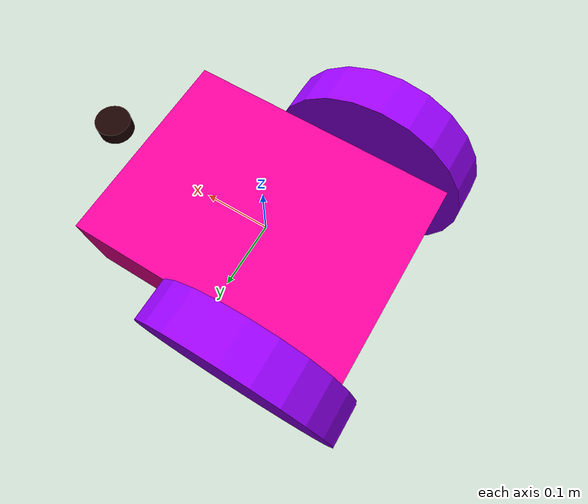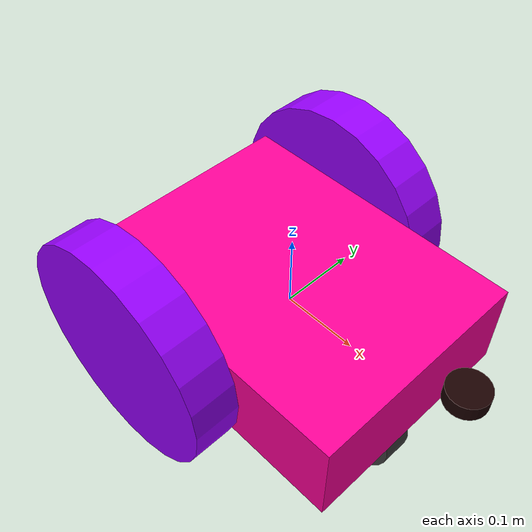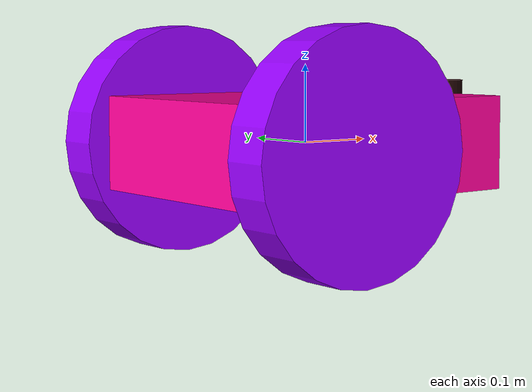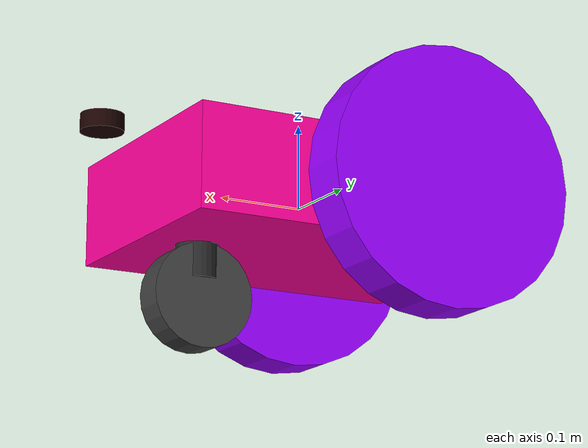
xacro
<?xml version="1.0"?>

<robot xmlns:xacro="http://www.ros.org/wiki/xacro" name="robot">

    <!-- PROPRIÉTÉS GÉNÉRALES                               -->

    <!-- Châssis -->
    <xacro:property name="base_length" value="0.40"/>
    <xacro:property name="base_width"  value="0.30"/>
    <xacro:property name="base_height" value="0.12"/>

    <!-- Roues motrices -->
    <xacro:property name="wheel_radius" value="0.15"/>
    <xacro:property name="wheel_width"  value="0.06"/>

    <!-- Position des roues motrices              -->
    <!-- Les roues sont légèrement vers l'arrière -->
    <xacro:property name="wheel_x" value="-0.08"/>
    <xacro:property name="wheel_y" value="0.18"/>
    <xacro:property name="wheel_z" value="0.0"/>

    <!-- Caster -->
    <xacro:property name="caster_x" value="0.13"/>
    <xacro:property name="caster_radius" value="0.06"/>
    <xacro:property name="caster_width" value="0.04"/>

    <!-- CHÂSSIS                                            -->
    <link name="base_link">
        <visual>
            <origin xyz="0 0 0"/>

            <geometry>
                <box size="${base_length} ${base_width} ${base_height}" />
            </geometry>

            <material name="base_color">
                <color rgba="1.0 0.0 0.6 1.0"/>
            </material>
        </visual>

        <collision>
            <origin xyz="0 0 0"/>

            <geometry>
                <box size="${base_length} ${base_width} ${base_height}" />
            </geometry>
        </collision>

        <inertial>
            <origin xyz="0 0 0"/>

            <mass value="5.0"/>

            <inertia
                ixx="0.0453"
                ixy="0.0"
                ixz="0.0"
                iyy="0.0713"
                iyz="0.0"
                izz="0.1042"
            />
        </inertial>
    </link>

    <!-- ROUE MOTRICE GAUCHE                                -->
    <link name="left_wheel">
        <visual>
            <origin xyz="0 0 0" rpy="1.5708 0 0" />
            <geometry>
                <cylinder radius="${wheel_radius}" length="${wheel_width}" />
            </geometry>

            <material name="wheel_color">
                <color rgba="0.6 0.0 1.0 1.0"/>
            </material>

        </visual>

        <collision>
            <origin xyz="0 0 0" rpy="1.5708 0 0" />

            <geometry>
                <cylinder radius="${wheel_radius}" length="${wheel_width}" />
            </geometry>
        </collision>

        <inertial>
            <origin xyz="0 0 0"/>

            <mass value="0.5"/>

            <inertia
                ixx="0.00945"
                ixy="0.0"
                ixz="0.0"
                iyy="0.005625"
                iyz="0.0"
                izz="0.00945"
            />

        </inertial>
    </link>

    <!-- Joint roue gauche -->
    <joint name="left_wheel_joint" type="continuous">

        <parent link="base_link"/>
        <child link="left_wheel"/>

        <origin
            xyz="${wheel_x} ${wheel_y} ${wheel_z}"
            rpy="0 0 0"
        />

        <!-- Axe de rotation de la roue -->
        <axis xyz="0 1 0"/>
    </joint>

<!-- ROUE MOTRICE DROITE                                -->
    <link name="right_wheel">
        <visual>

            <origin xyz="0 0 0" rpy="1.5708 0 0" />

            <geometry>
                <cylinder radius="${wheel_radius}" length="${wheel_width}" />
            </geometry>

            <material name="wheel_color">
                <color rgba="0.6 0.0 1.0 1.0"/>
            </material>
        </visual>

        <collision>
            <origin xyz="0 0 0" rpy="1.5708 0 0" />

            <geometry>
                <cylinder radius="${wheel_radius}" length="${wheel_width}" />
            </geometry>
        </collision>

        <inertial>
            <origin xyz="0 0 0"/>
            <mass value="0.5"/>

            <inertia
                ixx="0.00945"
                ixy="0.0"
                ixz="0.0"
                iyy="0.005625"
                iyz="0.0"
                izz="0.00945"
            />
        </inertial>
    </link>

    <!-- Joint roue droite -->
    <joint name="right_wheel_joint" type="continuous">

        <parent link="base_link"/>
        <child link="right_wheel"/>

        <origin xyz="${wheel_x} ${-wheel_y} ${wheel_z}" rpy="0 0 0" />

        <!-- Axe de rotation de la roue -->
        <axis xyz="0 1 0"/>
    </joint>

    <!-- SUPPORT DU CASTER                                  -->
    <link name="caster_fork">
        <visual>
            <origin xyz="0 0 0"/>
            <geometry>
                <cylinder radius="0.025" length="0.08" />
            </geometry>

            <material name="caster_fork_color">
                <color rgba="0.15 0.15 0.15 1.0"/>
            </material>
        </visual>

        <collision>
            <origin xyz="0 0 0"/>

            <geometry>
                <cylinder radius="0.025" length="0.08" />
            </geometry>
        </collision>

        <inertial>
            <origin xyz="0 0 0"/>

            <mass value="0.15"/>

            <inertia
                ixx="0.0001"
                ixy="0.0"
                ixz="0.0"
                iyy="0.0001"
                iyz="0.0"
                izz="0.0001"
            />

        </inertial>
    </link>

    <!-- Axe vertical permettant au caster de s'orienter -->
    <joint name="caster_swivel_joint" type="continuous">
        <parent link="base_link"/>
        <child link="caster_fork"/>

        <origin xyz="${caster_x} 0 -0.06" rpy="0 0 0" />

        <!-- Rotation du caster autour de Z -->
        <axis xyz="0 0 1"/>
    </joint>

    <!-- ROUE DU CASTER                                     -->
    <link name="caster_wheel">
        <visual>

            <!-- Roue dont l'axe est Y -->
            <origin xyz="0 0 0" rpy="1.5708 0 0" />

            <geometry>
                <cylinder radius="${caster_radius}" length="${caster_width}" />
            </geometry>

            <material name="caster_wheel_color">
                <color rgba="0.25 0.25 0.25 1.0"/>
            </material>
        </visual>

        <collision>
            <origin xyz="0 0 0" rpy="1.5708 0 0" />

            <geometry>
                <cylinder radius="${caster_radius}" length="${caster_width}" />
            </geometry>
        </collision>

        <inertial>
            <origin xyz="0 0 0"/>

            <mass value="0.2"/>

            <inertia
                ixx="0.0005"
                ixy="0.0"
                ixz="0.0"
                iyy="0.00036"
                iyz="0.0"
                izz="0.0005"
            />

        </inertial>
    </link>

    <!-- Rotation de la roue du caster -->
    <joint name="caster_wheel_joint" type="continuous">
        <parent link="caster_fork"/>
        <child link="caster_wheel"/>

        <origin xyz="0 0 -0.06" rpy="0 0 0" />

        <!-- Axe de rotation de la roue -->
        <axis xyz="0 1 0"/>
    </joint>

    <!-- LiDAR                                              -->
    <link name="lidar_link">
        <visual>
            <origin xyz="0 0 0"/>

            <geometry>
                <cylinder radius="0.025" length="0.02" />
            </geometry>

            <material name="lidar_color">
                <color rgba="0.1 0.0 0.0 1.0"/>
            </material>
        </visual>

        <inertial>
            <origin xyz="0 0 0"/>
            <mass value="0.1"/>

            <inertia
                ixx="0.00001"
                ixy="0.0"
                ixz="0.0"
                iyy="0.00001"
                iyz="0.0"
                izz="0.00001"
            />

        </inertial>
    </link>

    <!-- Position du LiDAR -->
    <joint name="lidar_joint" type="fixed">
        <parent link="base_link"/>
        <child link="lidar_link"/>

        <origin xyz="0.25 0 0.066" rpy="0 0 0" />
    </joint>

    <!-- CAPTEUR LiDAR GAZEBO                               -->
    <gazebo reference="lidar_link">
        <sensor name="front_lidar" type="gpu_lidar">

            <topic>/simulation/lidar_points</topic>

            <update_rate>10</update_rate>
            <always_on>true</always_on>
            <visualize>true</visualize>

            <lidar>
                <scan>

                    <!-- Balayage horizontal -->
                    <horizontal>
                        <samples>360</samples>
                        <resolution>1</resolution>

                        <min_angle>-1.5708</min_angle>
                        <max_angle>1.5708</max_angle>
                    </horizontal>

                    <!-- Balayage vertical -->
                    <vertical>
                        <samples>16</samples>
                        <resolution>1</resolution>

                        <min_angle>-0.2618</min_angle>
                        <max_angle>0.2618</max_angle>
                    </vertical>

                </scan>

                <!-- Portée -->
                <range>
                    <min>0.05</min>
                    <max>15.0</max>
                    <resolution>0.01</resolution>
                </range>
            </lidar>
        </sensor>
    </gazebo>

    <!-- DIFF DRIVE                                         -->
    <gazebo>
        <plugin filename="gz-sim-diff-drive-system" name="gz::sim::systems::DiffDrive">

            <left_joint>left_wheel_joint</left_joint>
            <right_joint>right_wheel_joint</right_joint>

            <wheel_separation>0.36</wheel_separation>
            <wheel_radius>0.15</wheel_radius>

            <topic>/cmd_vel</topic>

            <odom_publish_frequency>30</odom_publish_frequency>
        </plugin>
    </gazebo>
</robot>
